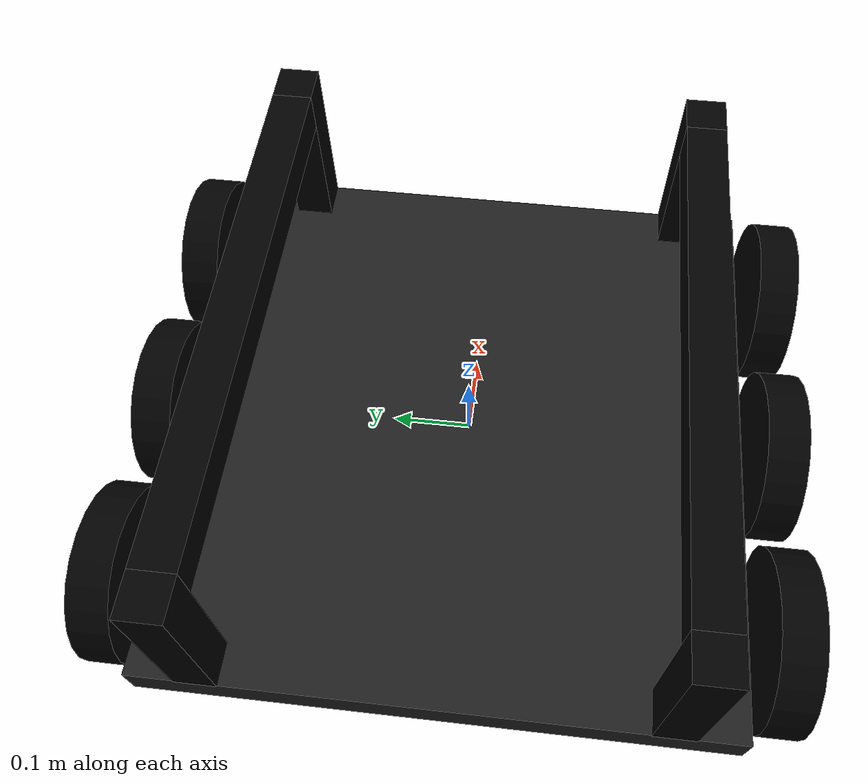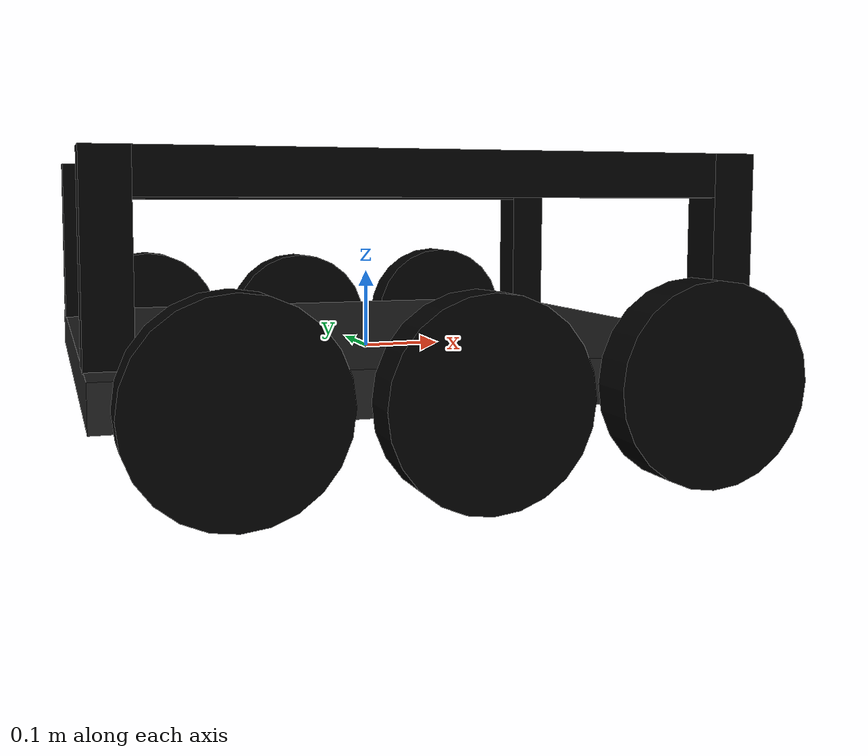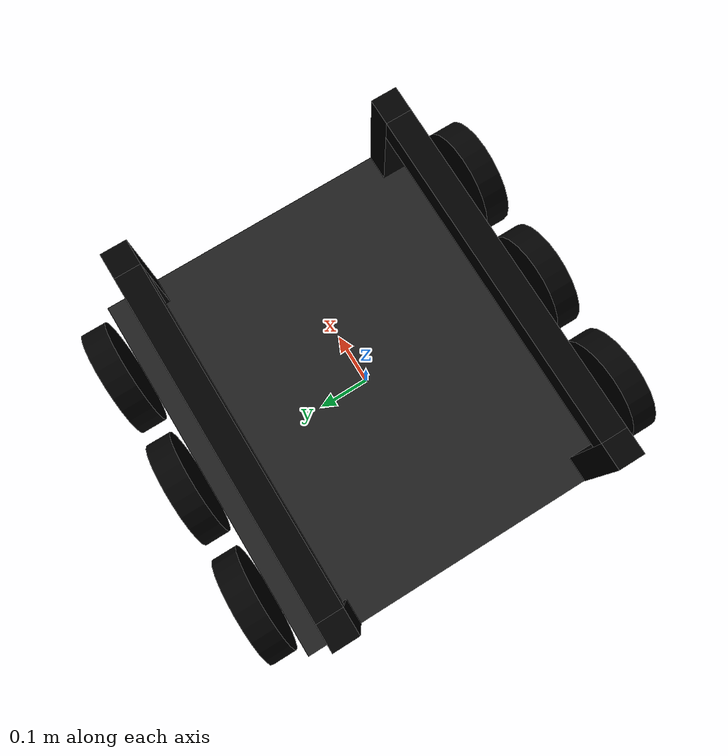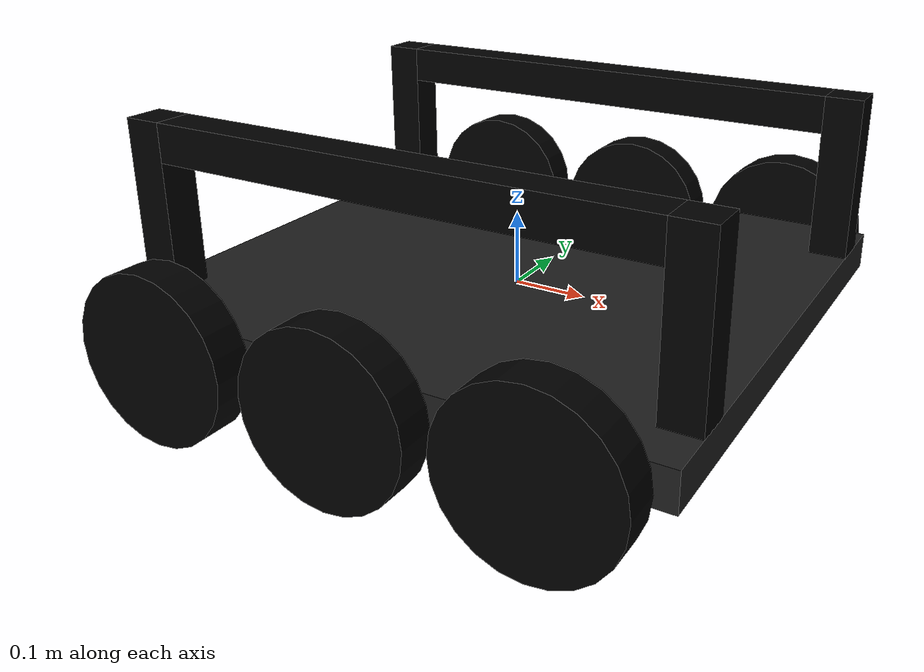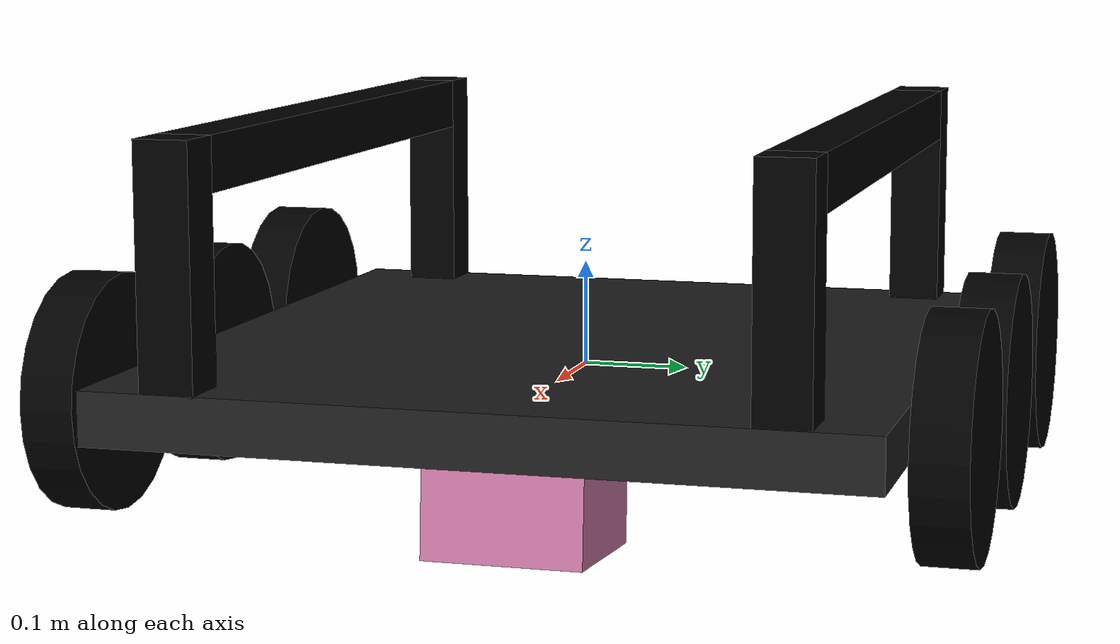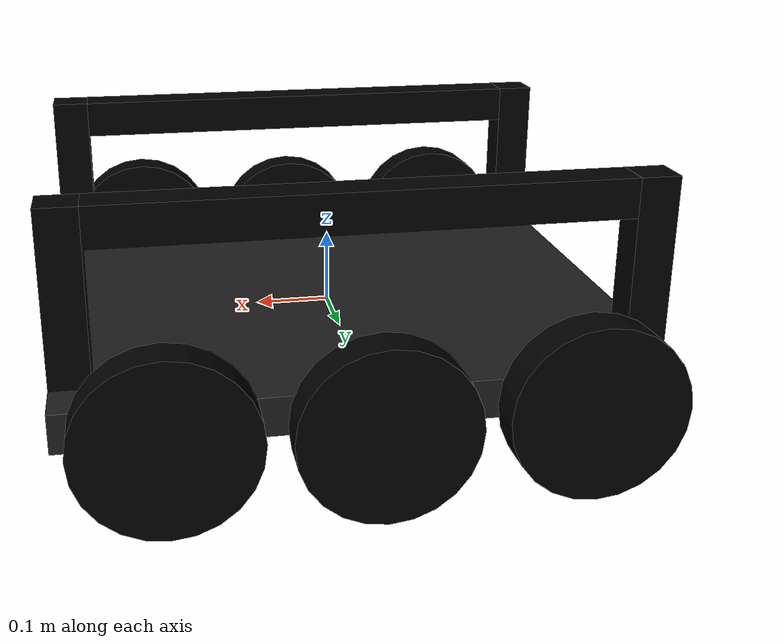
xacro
<?xml version="1.0"?>
<robot name="robot" xmlns:xacro="http://www.ros.org/wiki/xacro">
	<xacro:include filename="$(find robot_description)/urdf/robot_drive.xacro" />

	<gazebo>
	  <plugin name="gazebo_ros_control" filename="libgazebo_ros_control.so">
	    <robotNamespace>/robot</robotNamespace>
	    <robotParam>/robot_description</robotParam>
	  </plugin>
	</gazebo>
</robot>

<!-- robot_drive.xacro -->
<robot name="robot" xmlns:xacro="http://www.ros.org/wiki/xacro">
	<xacro:macro name="superstructure" params="suffix origin">
		<link name="superstructure${suffix}">
			<visual>
				<geometry>
					<box size=".0508 .0508 0.22265" />
				</geometry>
				<origin rpy="0 0 0" xyz="0 0 0" />
				<material name="black">
					<color rgba="0 0 0 1" />
				</material>
			</visual>

			<collision>
				<geometry>
					<box size=".0508 .0508 0.22265" />
				</geometry>

				<origin rpy="0 0 0" xyz="0 0 0" />
				<material name="black">
					<color rgba="0 0 0 1" />
				</material>
			</collision>

			<inertial>
				<mass value="1.36" />
				<inertia
					ixx="1.0" ixy="0.0" ixz="0.0"
					iyy="1.0" iyz="0.0"
					izz="1.0" />
			</inertial>

			<gazebo reference="superstructure${suffix}">
				<mu1>1.1</mu1>
				<mu2>1.1</mu2>
				<material>Gazebo/Black</material>
			</gazebo>
		</link>

		<joint name="base_to_superstructure${suffix}" type="fixed">
			<parent link="base_link" />
			<child link="superstructure${suffix}" />
			<origin xyz="${origin}" rpy="0 0 0" />
		</joint>

		<link name="superstructure-rear${suffix}">
			<visual>
				<geometry>
					<box size=".0508 .0508 0.22265" />
				</geometry>
				<origin rpy="0 0 0" xyz="0 0 0" />
				<material name="black">
					<color rgba="0 0 0 1" />
				</material>
			</visual>

			<collision>
				<geometry>
					<box size=".0508 .0508 0.22265" />
				</geometry>

				<origin rpy="0 0 0" xyz="0 0 0" />
				<material name="black">
					<color rgba="0 0 0 1" />
				</material>
			</collision>

			<inertial>
				<mass value="1.36" />
				<inertia
					ixx="1.0" ixy="0.0" ixz="0.0"
					iyy="1.0" iyz="0.0"
					izz="1.0" />
			</inertial>

			<gazebo reference="superstructure-rear${suffix}">
				<mu1>1.1</mu1>
				<mu2>1.1</mu2>
				<material>Gazebo/Black</material>
			</gazebo>
		</link>

		<joint name="ss_to_ssrear${suffix}" type="fixed">
			<parent link="superstructure${suffix}" />
			<child link="superstructure-rear${suffix}" />
			<origin xyz="-.71 0 0" rpy="0 0 0" />
		</joint>

		<link name="superstructure-cross${suffix}">
			<visual>
				<geometry>
					<box size="0.6592 .0508 0.0508" />
				</geometry>
				<origin rpy="0 0 0" xyz="0 0 0" />
				<material name="black">
					<color rgba="0 0 0 1" />
				</material>
			</visual>

			<collision>
				<geometry>
					<box size="0.6592 .0508 0.0508" />
				</geometry>

				<origin rpy="0 0 0" xyz="0 0 0" />
				<material name="black">
					<color rgba="0 0 0 1" />
				</material>
			</collision>

			<inertial>
				<mass value="1.36" />
				<inertia
					ixx="1.0" ixy="0.0" ixz="0.0"
					iyy="1.0" iyz="0.0"
					izz="1.0" />
			</inertial>

			<gazebo reference="superstructure-cross${suffix}">
				<mu1>1.1</mu1>
				<mu2>1.1</mu2>
				<material>Gazebo/Black</material>
			</gazebo>
		</link>

		<joint name="ss_to_sscross${suffix}" type="fixed">
			<parent link="superstructure${suffix}" />
			<child link="superstructure-cross${suffix}" />
			<origin xyz="-0.355 0 0.085925" rpy="0 0 0" />
		</joint>
	</xacro:macro>
	<xacro:macro name="wheel" params="suffix origin motor">
		<link name="wheel${suffix}">
			<visual>
				<geometry>
					<cylinder length="0.05" radius="0.11" />
				</geometry>
				<origin rpy="0 0 0" xyz="0 0 0" />
				<material name="black">
					<color rgba="0 0 0 1" />
				</material>
			</visual>

			<collision>
				<geometry>
					<cylinder length="0.05" radius="0.11" />
				</geometry>

				<origin rpy="0 0 0" xyz="0 0 0" />
				<material name="black">
					<color rgba="0 0 0 1" />
				</material>
			</collision>

			<inertial>
				<mass value="1.36" />
				<inertia
					ixx="1.0" ixy="0.0" ixz="0.0"
					iyy="1.0" iyz="0.0"
					izz="1.0" />
			</inertial>

			<gazebo reference="wheel${suffix}">
				<mu1>1.1</mu1>
				<mu2>1.1</mu2>
				<material>Gazebo/Black</material>
			</gazebo>
		</link>

		<joint name="base_to_wheel${suffix}" type="continuous">
			<parent link="base_link" />
			<child link="wheel${suffix}" />
			<axis xyz="0 0 1" />
			<origin xyz="${origin}" rpy="4.71238898038 0 0" />
		</joint>

		  <transmission name="tran${suffix}">
		   <type>hardware_interface</type>
		    <joint name="base_to_wheel${suffix}">
		       <hardwareInterface>VelocityJointInterface</hardwareInterface>
		    </joint>
			<actuator name="${motor}">
				<hardwareInterface>VelocityJointInterface</hardwareInterface>
				<mechanicalReduction>1</mechanicalReduction>
			</actuator>
		    <mechanicalReduction>1</mechanicalReduction>
		    <motorTorqueConstant>1</motorTorqueConstant>
		  </transmission>
	</xacro:macro>

	<xacro:macro name="lidar" params="suffix origin topic minang maxang rotation">
		<link name="xv11_${suffix}">
			<collision>
				<origin xyz="0 0 0" rpy="0 0 0"/>
				<geometry>
					<box size="0.001 0.001 0.001"/>
				</geometry>
			</collision>

			<visual>
				<origin xyz="0 0 0" rpy="0 0 0"/>
				<geometry>
					<box size="0.15 0.15 0.15"/>
				</geometry>
			</visual>

			<inertial>
				<mass value="1e-5" />
				<origin xyz="0 0 0" rpy="0 0 0"/>
				<inertia ixx="1e-6" ixy="0" ixz="0" iyy="1e-6" iyz="0" izz="1e-6" />
			</inertial>
		</link>

		<joint name="xv11_${suffix}_joint" type="fixed">
			<axis xyz="0 0 0" />
			<origin xyz="${origin}" rpy="0 -0.07 ${rotation}"/>
			<parent link="base_link"/>
			<child link="xv11_${suffix}"/>
		</joint>

				<!-- hokuyo -->
		<gazebo reference="xv11_${suffix}">
			<sensor type="gpu_ray" name="xv11_${suffix}_sensor">
				<pose>0 0 0 0 0 0</pose>
				<visualize>false</visualize>
				<update_rate>40</update_rate>
				<ray>
					<scan>
						<horizontal>
							<samples>720</samples>
							<resolution>1</resolution>
							<min_angle>${minang}</min_angle>
							<max_angle>${maxang}</max_angle>
						</horizontal>
					</scan>
					<range>
						<min>0.10</min>
						<max>30.0</max>
						<resolution>0.01</resolution>
					</range>
					<noise>
						<type>gaussian</type>
						<mean>0.0</mean>
						<stddev>0.01</stddev>
					</noise>
				</ray>
				<plugin name="xv11_${suffix}_controller" filename="libgazebo_ros_gpu_laser.so">
					<topicName>${topic}</topicName>
   					<frameName>xv11_${suffix}</frameName>
   				</plugin>
  			</sensor>
		</gazebo>
	</xacro:macro>

       <link name="base_link">
               <visual>
                       <geometry>
                               <box size="0.76 0.71 0.05" />
                       </geometry>
               </visual>

               <collision>
                       <geometry>
                               <box size="0.76 0.71 0.05" />
                       </geometry>
               </collision>

               <inertial>
                       <mass value="1000" />
                       <inertia
                               ixx="1.0" ixy="0.0" ixz="0.0"
                               iyy="1.0" iyz="0.0"
                               izz="1.0" />
               </inertial>

               <gazebo reference="base_link">
                       <mu1>10000</mu1>
                       <mu2>10000</mu2>
                       <material>Gazebo/Black</material>
               </gazebo>
       </link>

	<xacro:superstructure suffix="left" origin="0.3546 -0.27 0.135" />
	<xacro:superstructure suffix="right" origin="0.3546 0.27 0.135" />

	<xacro:wheel suffix="rcenter" origin="0 0.395 -.0063" motor="rmotor" />
	<xacro:wheel suffix="lcenter" origin="0 -0.395 -.0063" motor="lmotor" />

	<xacro:wheel suffix="rfront" origin=".25 0.395 0" motor="rmotor" />
	<xacro:wheel suffix="lfront" origin=".25 -0.395 0" motor="lmotor" />

	<xacro:wheel suffix="rrear" origin="-.25 0.395 0" motor="rmotor" />
	<xacro:wheel suffix="lrear" origin="-.25 -0.395 0" motor="lmotor" />

	<xacro:lidar suffix="rear" origin="-.2 0 -0.063" topic="laserscan" minang="-1.021018" maxang="1.021018" rotation="3.1415" />370.487000000
	<xacro:lidar suffix="front" origin=".2 0 -0.063" topic="laserscan" minang="-1.021018" maxang="1.021018" rotation="0" />

</robot>
